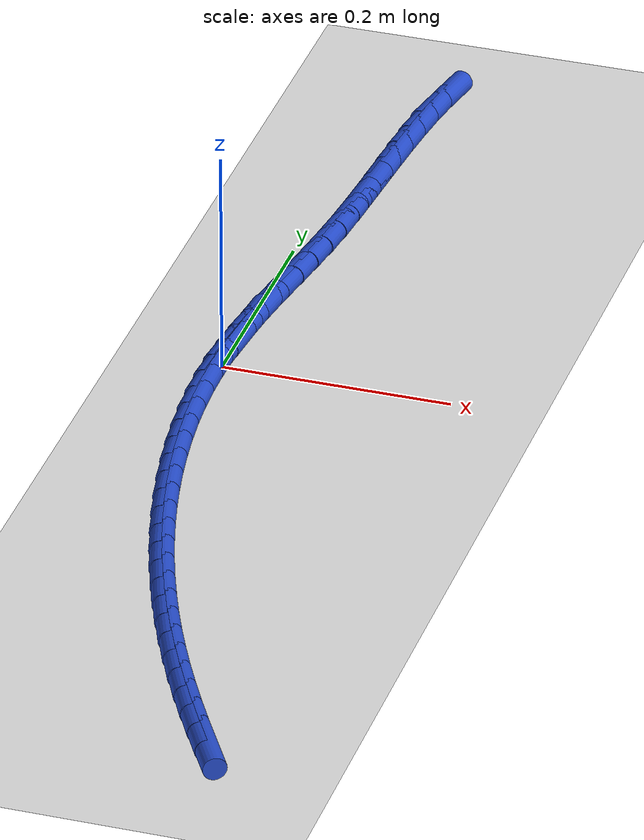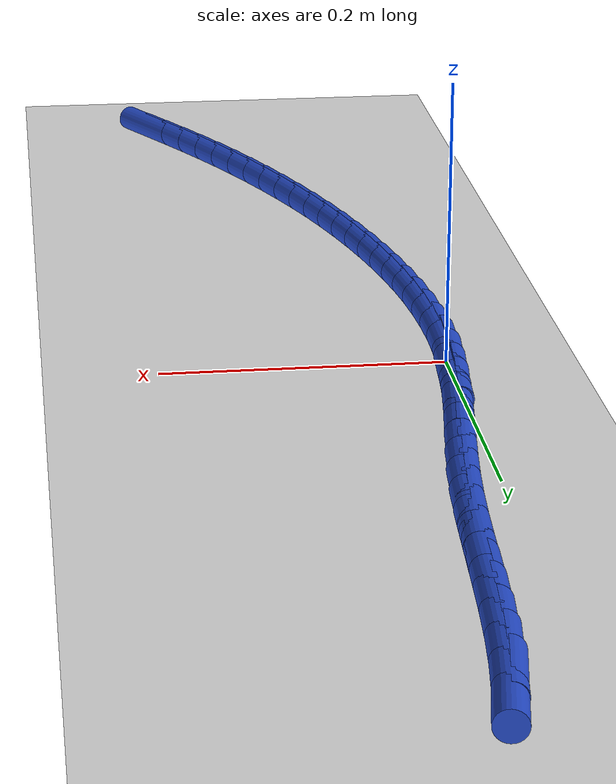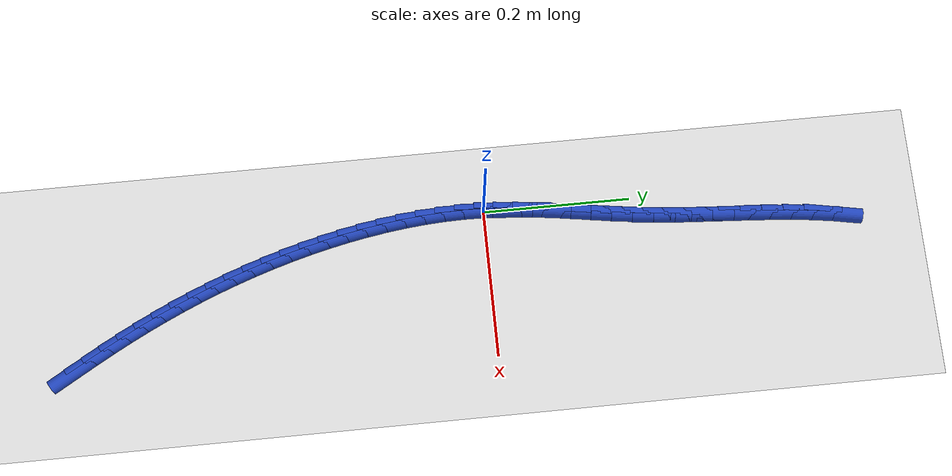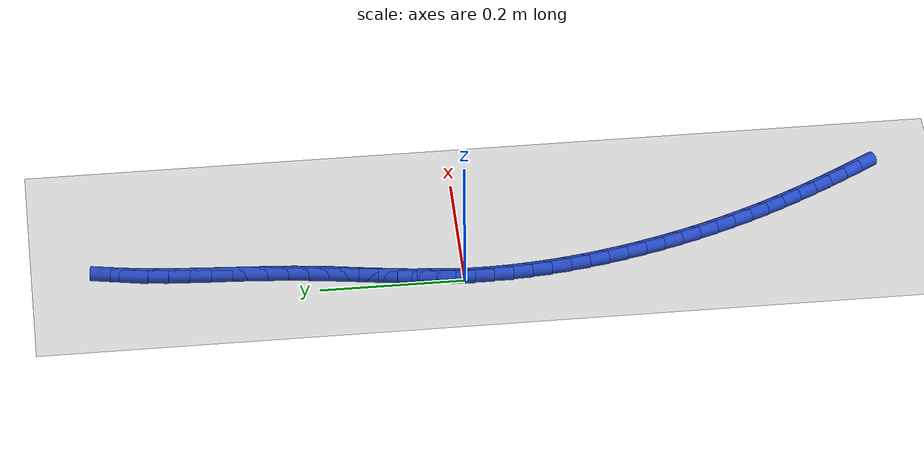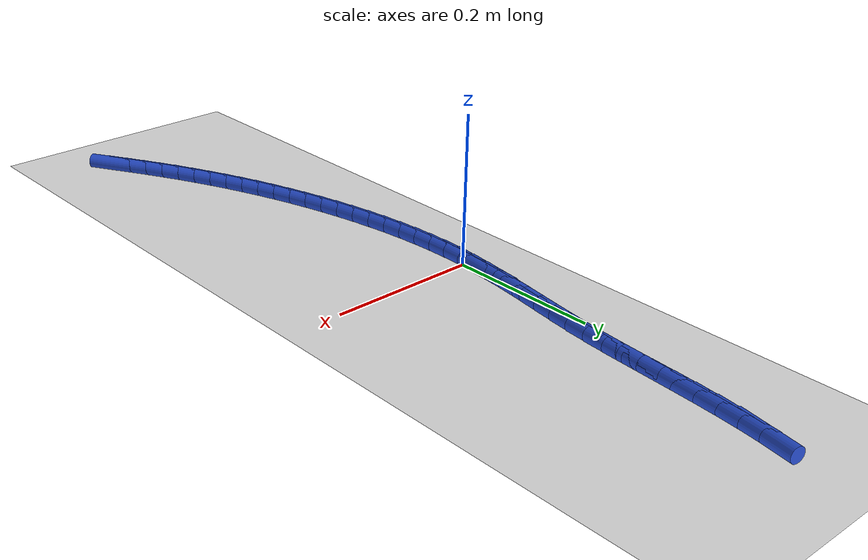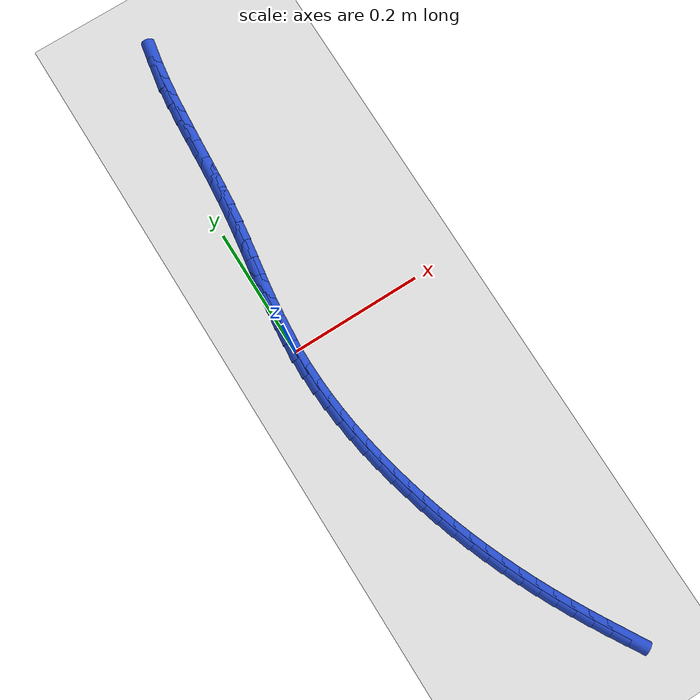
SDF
<sdf version="1.6">
 <world name="default">
  <model name="ground_plane">
   <static>1</static>
   <link name="link">
    <collision name="collision">
     <geometry><plane><normal>0 0 1</normal><size>100 100</size></plane></geometry>
     <surface><friction><ode><mu>100</mu><mu2>50</mu2></ode></friction></surface>
    </collision>
    <visual name="visual">
     <cast_shadows>0</cast_shadows>
     <geometry><plane><normal>0 0 1</normal><size>100 100</size></plane></geometry>
     <material>
      <script><uri>file://media/materials/scripts/gazebo.material</uri><name>Gazebo/WhiteGlow</name></script>
     </material>
    </visual>
   </link>
  </model>
  <model name="line">
   <link name="link_0">
    <pose>7.806255641895632e-18 1.3877787807814457e-17 0.01 0 1.57 1.514587896362002</pose>
    <collision name="collision">
     <geometry><cylinder><radius>0.01</radius><length>0.08</length></cylinder></geometry>
    </collision>
    <visual name="visual">
     <material>
      <script><name>Gazebo/Blue</name><uri>file://media/materials/scripts/gazebo.material</uri></script>
     </material>
     <geometry><cylinder><radius>0.01</radius><length>0.08</length></cylinder></geometry>
    </visual>
   </link>
   <link name="link_1">
    <pose>0.0014770493484000506 0.026250394922614786 0.01 0 1.57 1.4805047317773097</pose>
    <collision name="collision">
     <geometry><cylinder><radius>0.01</radius><length>0.08</length></cylinder></geometry>
    </collision>
    <visual name="visual">
     <material>
      <script><name>Gazebo/Blue</name><uri>file://media/materials/scripts/gazebo.material</uri></script>
     </material>
     <geometry><cylinder><radius>0.01</radius><length>0.08</length></cylinder></geometry>
    </visual>
   </link>
   <link name="link_2">
    <pose>0.0038420901585894352 0.0523725412709468 0.01 0 1.57 1.454021096162606</pose>
    <collision name="collision">
     <geometry><cylinder><radius>0.01</radius><length>0.08</length></cylinder></geometry>
    </collision>
    <visual name="visual">
     <material>
      <script><name>Gazebo/Blue</name><uri>file://media/materials/scripts/gazebo.material</uri></script>
     </material>
     <geometry><cylinder><radius>0.01</radius><length>0.08</length></cylinder></geometry>
    </visual>
   </link>
   <link name="link_3">
    <pose>0.00690294590006227 0.07846480404666 0.01 0 1.57 1.4353766958146992</pose>
    <collision name="collision">
     <geometry><cylinder><radius>0.01</radius><length>0.08</length></cylinder></geometry>
    </collision>
    <visual name="visual">
     <material>
      <script><name>Gazebo/Blue</name><uri>file://media/materials/scripts/gazebo.material</uri></script>
     </material>
     <geometry><cylinder><radius>0.01</radius><length>0.08</length></cylinder></geometry>
    </visual>
   </link>
   <link name="link_4">
    <pose>0.010467440042312667 0.10462554825141833 0.01 0 1.57 1.424626006290899</pose>
    <collision name="collision">
     <geometry><cylinder><radius>0.01</radius><length>0.08</length></cylinder></geometry>
    </collision>
    <visual name="visual">
     <material>
      <script><name>Gazebo/Blue</name><uri>file://media/materials/scripts/gazebo.material</uri></script>
     </material>
     <geometry><cylinder><radius>0.01</radius><length>0.08</length></cylinder></geometry>
    </visual>
   </link>
   <link name="link_5">
    <pose>0.014343396054834737 0.13095313888688573 0.01 0 1.57 1.421673920319607</pose>
    <collision name="collision">
     <geometry><cylinder><radius>0.01</radius><length>0.08</length></cylinder></geometry>
    </collision>
    <visual name="visual">
     <material>
      <script><name>Gazebo/Blue</name><uri>file://media/materials/scripts/gazebo.material</uri></script>
     </material>
     <geometry><cylinder><radius>0.01</radius><length>0.08</length></cylinder></geometry>
    </visual>
   </link>
   <link name="link_6">
    <pose>0.018338637407122587 0.15754594095472613 0.01 0 1.57 1.4263030760799773</pose>
    <collision name="collision">
     <geometry><cylinder><radius>0.01</radius><length>0.08</length></cylinder></geometry>
    </collision>
    <visual name="visual">
     <material>
      <script><name>Gazebo/Blue</name><uri>file://media/materials/scripts/gazebo.material</uri></script>
     </material>
     <geometry><cylinder><radius>0.01</radius><length>0.08</length></cylinder></geometry>
    </visual>
   </link>
   <link name="link_7">
    <pose>0.02226098756867033 0.18450231945660348 0.01 0 1.57 1.4381908114511264</pose>
    <collision name="collision">
     <geometry><cylinder><radius>0.01</radius><length>0.08</length></cylinder></geometry>
    </collision>
    <visual name="visual">
     <material>
      <script><name>Gazebo/Blue</name><uri>file://media/materials/scripts/gazebo.material</uri></script>
     </material>
     <geometry><cylinder><radius>0.01</radius><length>0.08</length></cylinder></geometry>
    </visual>
   </link>
   <link name="link_8">
    <pose>0.025918270008972077 0.21192063939418174 0.01 0 1.57 1.456916770432809</pose>
    <collision name="collision">
     <geometry><cylinder><radius>0.01</radius><length>0.08</length></cylinder></geometry>
    </collision>
    <visual name="visual">
     <material>
      <script><name>Gazebo/Blue</name><uri>file://media/materials/scripts/gazebo.material</uri></script>
     </material>
     <geometry><cylinder><radius>0.01</radius><length>0.08</length></cylinder></geometry>
    </visual>
   </link>
   <link name="link_9">
    <pose>0.029118308786755177 0.23989926535403608 0.01 0 1.57 1.4793346312724578</pose>
    <collision name="collision">
     <geometry><cylinder><radius>0.01</radius><length>0.08</length></cylinder></geometry>
    </collision>
    <visual name="visual">
     <material>
      <script><name>Gazebo/Blue</name><uri>file://media/materials/scripts/gazebo.material</uri></script>
     </material>
     <geometry><cylinder><radius>0.01</radius><length>0.08</length></cylinder></geometry>
    </visual>
   </link>
   <link name="link_10">
    <pose>0.031740244625666 0.26848632249421284 0.01 0 1.57 1.4955250086959533</pose>
    <collision name="collision">
     <geometry><cylinder><radius>0.01</radius><length>0.08</length></cylinder></geometry>
    </collision>
    <visual name="visual">
     <material>
      <script><name>Gazebo/Blue</name><uri>file://media/materials/scripts/gazebo.material</uri></script>
     </material>
     <geometry><cylinder><radius>0.01</radius><length>0.08</length></cylinder></geometry>
    </visual>
   </link>
   <link name="link_11">
    <pose>0.033931370791312906 0.2975410343957975 0.01 0 1.57 1.5037256005084356</pose>
    <collision name="collision">
     <geometry><cylinder><radius>0.01</radius><length>0.08</length></cylinder></geometry>
    </collision>
    <visual name="visual">
     <material>
      <script><name>Gazebo/Blue</name><uri>file://media/materials/scripts/gazebo.material</uri></script>
     </material>
     <geometry><cylinder><radius>0.01</radius><length>0.08</length></cylinder></geometry>
    </visual>
   </link>
   <link name="link_12">
    <pose>0.03590199393413775 0.32687823450403164 0.01 0 1.57 1.5042915713219993</pose>
    <collision name="collision">
     <geometry><cylinder><radius>0.01</radius><length>0.08</length></cylinder></geometry>
    </collision>
    <visual name="visual">
     <material>
      <script><name>Gazebo/Blue</name><uri>file://media/materials/scripts/gazebo.material</uri></script>
     </material>
     <geometry><cylinder><radius>0.01</radius><length>0.08</length></cylinder></geometry>
    </visual>
   </link>
   <link name="link_13">
    <pose>0.037862420704582345 0.35631275626415665 0.01 0 1.57 1.497307724409378</pose>
    <collision name="collision">
     <geometry><cylinder><radius>0.01</radius><length>0.08</length></cylinder></geometry>
    </collision>
    <visual name="visual">
     <material>
      <script><name>Gazebo/Blue</name><uri>file://media/materials/scripts/gazebo.material</uri></script>
     </material>
     <geometry><cylinder><radius>0.01</radius><length>0.08</length></cylinder></geometry>
    </visual>
   </link>
   <link name="link_14">
    <pose>0.04002295775308848 0.38565943312141393 0.01 0 1.57 1.4825967873798298</pose>
    <collision name="collision">
     <geometry><cylinder><radius>0.01</radius><length>0.08</length></cylinder></geometry>
    </collision>
    <visual name="visual">
     <material>
      <script><name>Gazebo/Blue</name><uri>file://media/materials/scripts/gazebo.material</uri></script>
     </material>
     <geometry><cylinder><radius>0.01</radius><length>0.08</length></cylinder></geometry>
    </visual>
   </link>
   <link name="link_15">
    <pose>0.04259391173009801 0.41473309852104495 0.01 0 1.57 1.4597187084186494</pose>
    <collision name="collision">
     <geometry><cylinder><radius>0.01</radius><length>0.08</length></cylinder></geometry>
    </collision>
    <visual name="visual">
     <material>
      <script><name>Gazebo/Blue</name><uri>file://media/materials/scripts/gazebo.material</uri></script>
     </material>
     <geometry><cylinder><radius>0.01</radius><length>0.08</length></cylinder></geometry>
    </visual>
   </link>
   <link name="link_16">
    <pose>0.045785589286052725 0.443348585908291 0.01 0 1.57 1.4279644087267036</pose>
    <collision name="collision">
     <geometry><cylinder><radius>0.01</radius><length>0.08</length></cylinder></geometry>
    </collision>
    <visual name="visual">
     <material>
      <script><name>Gazebo/Blue</name><uri>file://media/materials/scripts/gazebo.material</uri></script>
     </material>
     <geometry><cylinder><radius>0.01</radius><length>0.08</length></cylinder></geometry>
    </visual>
   </link>
   <link name="link_17">
    <pose>0.049808297071394475 0.47132072872839387 0.01 0 1.57 1.3863520234284576</pose>
    <collision name="collision">
     <geometry><cylinder><radius>0.01</radius><length>0.08</length></cylinder></geometry>
    </collision>
    <visual name="visual">
     <material>
      <script><name>Gazebo/Blue</name><uri>file://media/materials/scripts/gazebo.material</uri></script>
     </material>
     <geometry><cylinder><radius>0.01</radius><length>0.08</length></cylinder></geometry>
    </visual>
   </link>
   <link name="link_238">
    <pose>0.16692384186100473 -0.5596194425557584 0.01 0 1.57 -1.0411806943216348</pose>
    <collision name="collision">
     <geometry><cylinder><radius>0.01</radius><length>0.08</length></cylinder></geometry>
    </collision>
    <visual name="visual">
     <material>
      <script><name>Gazebo/Blue</name><uri>file://media/materials/scripts/gazebo.material</uri></script>
     </material>
     <geometry><cylinder><radius>0.01</radius><length>0.08</length></cylinder></geometry>
    </visual>
   </link>
   <link name="link_239">
    <pose>0.15335848178515002 -0.5364466695069651 0.01 0 1.57 -1.0563188091320044</pose>
    <collision name="collision">
     <geometry><cylinder><radius>0.01</radius><length>0.08</length></cylinder></geometry>
    </collision>
    <visual name="visual">
     <material>
      <script><name>Gazebo/Blue</name><uri>file://media/materials/scripts/gazebo.material</uri></script>
     </material>
     <geometry><cylinder><radius>0.01</radius><length>0.08</length></cylinder></geometry>
    </visual>
   </link>
   <link name="link_240">
    <pose>0.14015477678436183 -0.5130876973180528 0.01 0 1.57 -1.0736356181914426</pose>
    <collision name="collision">
     <geometry><cylinder><radius>0.01</radius><length>0.08</length></cylinder></geometry>
    </collision>
    <visual name="visual">
     <material>
      <script><name>Gazebo/Blue</name><uri>file://media/materials/scripts/gazebo.material</uri></script>
     </material>
     <geometry><cylinder><radius>0.01</radius><length>0.08</length></cylinder></geometry>
    </visual>
   </link>
   <link name="link_241">
    <pose>0.12736507547476375 -0.48951749083857377 0.01 0 1.57 -1.0931310517319888</pose>
    <collision name="collision">
     <geometry><cylinder><radius>0.01</radius><length>0.08</length></cylinder></geometry>
    </collision>
    <visual name="visual">
     <material>
      <script><name>Gazebo/Blue</name><uri>file://media/materials/scripts/gazebo.material</uri></script>
     </material>
     <geometry><cylinder><radius>0.01</radius><length>0.08</length></cylinder></geometry>
    </visual>
   </link>
   <link name="link_242">
    <pose>0.11504172647247937 -0.46571101491808004 0.01 0 1.57 -1.1145467853906288</pose>
    <collision name="collision">
     <geometry><cylinder><radius>0.01</radius><length>0.08</length></cylinder></geometry>
    </collision>
    <visual name="visual">
     <material>
      <script><name>Gazebo/Blue</name><uri>file://media/materials/scripts/gazebo.material</uri></script>
     </material>
     <geometry><cylinder><radius>0.01</radius><length>0.08</length></cylinder></geometry>
    </visual>
   </link>
   <link name="link_243">
    <pose>0.10323149399382703 -0.44164711627502673 0.01 0 1.57 -1.1367372994317626</pose>
    <collision name="collision">
     <geometry><cylinder><radius>0.01</radius><length>0.08</length></cylinder></geometry>
    </collision>
    <visual name="visual">
     <material>
      <script><name>Gazebo/Blue</name><uri>file://media/materials/scripts/gazebo.material</uri></script>
     </material>
     <geometry><cylinder><radius>0.01</radius><length>0.08</length></cylinder></geometry>
    </visual>
   </link>
   <link name="link_244">
    <pose>0.09195585775014047 -0.4173222175782043 0.01 0 1.57 -1.1593766733558228</pose>
    <collision name="collision">
     <geometry><cylinder><radius>0.01</radius><length>0.08</length></cylinder></geometry>
    </collision>
    <visual name="visual">
     <material>
      <script><name>Gazebo/Blue</name><uri>file://media/materials/scripts/gazebo.material</uri></script>
     </material>
     <geometry><cylinder><radius>0.01</radius><length>0.08</length></cylinder></geometry>
    </visual>
   </link>
   <link name="link_245">
    <pose>0.0812291449285434 -0.3927377134114306 0.01 0 1.57 -1.1824591986246549</pose>
    <collision name="collision">
     <geometry><cylinder><radius>0.01</radius><length>0.08</length></cylinder></geometry>
    </collision>
    <visual name="visual">
     <material>
      <script><name>Gazebo/Blue</name><uri>file://media/materials/scripts/gazebo.material</uri></script>
     </material>
     <geometry><cylinder><radius>0.01</radius><length>0.08</length></cylinder></geometry>
    </visual>
   </link>
   <link name="link_246">
    <pose>0.0710656822708496 -0.3678949986680719 0.01 0 1.57 -1.2059770648903225</pose>
    <collision name="collision">
     <geometry><cylinder><radius>0.01</radius><length>0.08</length></cylinder></geometry>
    </collision>
    <visual name="visual">
     <material>
      <script><name>Gazebo/Blue</name><uri>file://media/materials/scripts/gazebo.material</uri></script>
     </material>
     <geometry><cylinder><radius>0.01</radius><length>0.08</length></cylinder></geometry>
    </visual>
   </link>
   <link name="link_247">
    <pose>0.06147979651887208 -0.34279546824149326 0.01 0 1.57 -1.2299202259452813</pose>
    <collision name="collision">
     <geometry><cylinder><radius>0.01</radius><length>0.08</length></cylinder></geometry>
    </collision>
    <visual name="visual">
     <material>
      <script><name>Gazebo/Blue</name><uri>file://media/materials/scripts/gazebo.material</uri></script>
     </material>
     <geometry><cylinder><radius>0.01</radius><length>0.08</length></cylinder></geometry>
    </visual>
   </link>
   <link name="link_248">
    <pose>0.052485814414424146 -0.31744051702506004 0.01 0 1.57 -1.2542763017727006</pose>
    <collision name="collision">
     <geometry><cylinder><radius>0.01</radius><length>0.08</length></cylinder></geometry>
    </collision>
    <visual name="visual">
     <material>
      <script><name>Gazebo/Blue</name><uri>file://media/materials/scripts/gazebo.material</uri></script>
     </material>
     <geometry><cylinder><radius>0.01</radius><length>0.08</length></cylinder></geometry>
    </visual>
   </link>
   <link name="link_249">
    <pose>0.04409806269931908 -0.29183153991213784 0.01 0 1.57 -1.279030500640688</pose>
    <collision name="collision">
     <geometry><cylinder><radius>0.01</radius><length>0.08</length></cylinder></geometry>
    </collision>
    <visual name="visual">
     <material>
      <script><name>Gazebo/Blue</name><uri>file://media/materials/scripts/gazebo.material</uri></script>
     </material>
     <geometry><cylinder><radius>0.01</radius><length>0.08</length></cylinder></geometry>
    </visual>
   </link>
   <link name="link_250">
    <pose>0.03633086811537017 -0.26596993179609196 0.01 0 1.57 -1.3041655651880157</pose>
    <collision name="collision">
     <geometry><cylinder><radius>0.01</radius><length>0.08</length></cylinder></geometry>
    </collision>
    <visual name="visual">
     <material>
      <script><name>Gazebo/Blue</name><uri>file://media/materials/scripts/gazebo.material</uri></script>
     </material>
     <geometry><cylinder><radius>0.01</radius><length>0.08</length></cylinder></geometry>
    </visual>
   </link>
   <link name="link_251">
    <pose>0.02919855740439069 -0.23985708757028792 0.01 0 1.57 -1.3297789930578212</pose>
    <collision name="collision">
     <geometry><cylinder><radius>0.01</radius><length>0.08</length></cylinder></geometry>
    </collision>
    <visual name="visual">
     <material>
      <script><name>Gazebo/Blue</name><uri>file://media/materials/scripts/gazebo.material</uri></script>
     </material>
     <geometry><cylinder><radius>0.01</radius><length>0.08</length></cylinder></geometry>
    </visual>
   </link>
   <link name="link_252">
    <pose>0.02272072318036449 -0.2135024905617783 0.01 0 1.57 -1.3564089407210482</pose>
    <collision name="collision">
     <geometry><cylinder><radius>0.01</radius><length>0.08</length></cylinder></geometry>
    </collision>
    <visual name="visual">
     <material>
      <script><name>Gazebo/Blue</name><uri>file://media/materials/scripts/gazebo.material</uri></script>
     </material>
     <geometry><cylinder><radius>0.01</radius><length>0.08</length></cylinder></geometry>
    </visual>
   </link>
   <link name="link_253">
    <pose>0.016939366899650525 -0.186950044309444 0.01 0 1.57 -1.3843201869254738</pose>
    <collision name="collision">
     <geometry><cylinder><radius>0.01</radius><length>0.08</length></cylinder></geometry>
    </collision>
    <visual name="visual">
     <material>
      <script><name>Gazebo/Blue</name><uri>file://media/materials/scripts/gazebo.material</uri></script>
     </material>
     <geometry><cylinder><radius>0.01</radius><length>0.08</length></cylinder></geometry>
    </visual>
   </link>
   <link name="link_254">
    <pose>0.011902449775285831 -0.16025280659957586 0.01 0 1.57 -1.4136598693385622</pose>
    <collision name="collision">
     <geometry><cylinder><radius>0.01</radius><length>0.08</length></cylinder></geometry>
    </collision>
    <visual name="visual">
     <material>
      <script><name>Gazebo/Blue</name><uri>file://media/materials/scripts/gazebo.material</uri></script>
     </material>
     <geometry><cylinder><radius>0.01</radius><length>0.08</length></cylinder></geometry>
    </visual>
   </link>
   <link name="link_255">
    <pose>0.0076579330695484065 -0.13346383529409964 0.01 0 1.57 -1.4445810314788248</pose>
    <collision name="collision">
     <geometry><cylinder><radius>0.01</radius><length>0.08</length></cylinder></geometry>
    </collision>
    <visual name="visual">
     <material>
      <script><name>Gazebo/Blue</name><uri>file://media/materials/scripts/gazebo.material</uri></script>
     </material>
     <geometry><cylinder><radius>0.01</radius><length>0.08</length></cylinder></geometry>
    </visual>
   </link>
   <link name="link_256">
    <pose>0.004253778044716237 -0.10663618825494112 0.01 0 1.57 -1.4772423344026469</pose>
    <collision name="collision">
     <geometry><cylinder><radius>0.01</radius><length>0.08</length></cylinder></geometry>
    </collision>
    <visual name="visual">
     <material>
      <script><name>Gazebo/Blue</name><uri>file://media/materials/scripts/gazebo.material</uri></script>
     </material>
     <geometry><cylinder><radius>0.01</radius><length>0.08</length></cylinder></geometry>
    </visual>
   </link>
   <link name="link_257">
    <pose>0.0017379459630673202 -0.0798229233440261 0.01 0 1.57 -1.5118071079762705</pose>
    <collision name="collision">
     <geometry><cylinder><radius>0.01</radius><length>0.08</length></cylinder></geometry>
    </collision>
    <visual name="visual">
     <material>
      <script><name>Gazebo/Blue</name><uri>file://media/materials/scripts/gazebo.material</uri></script>
     </material>
     <geometry><cylinder><radius>0.01</radius><length>0.08</length></cylinder></geometry>
    </visual>
   </link>
   <link name="link_258">
    <pose>0.0001583980868796477 -0.053077098423280386 0.01 0 1.57 -1.5484415501222777</pose>
    <collision name="collision">
     <geometry><cylinder><radius>0.01</radius><length>0.08</length></cylinder></geometry>
    </collision>
    <visual name="visual">
     <material>
      <script><name>Gazebo/Blue</name><uri>file://media/materials/scripts/gazebo.material</uri></script>
     </material>
     <geometry><cylinder><radius>0.01</radius><length>0.08</length></cylinder></geometry>
    </visual>
   </link>
   <link name="link_259">
    <pose>-0.00043690432156878907 -0.026451771354629772 0.01 0 1.57 1.554280812906304</pose>
    <collision name="collision">
     <geometry><cylinder><radius>0.01</radius><length>0.08</length></cylinder></geometry>
    </collision>
    <visual name="visual">
     <material>
      <script><name>Gazebo/Blue</name><uri>file://media/materials/scripts/gazebo.material</uri></script>
     </material>
     <geometry><cylinder><radius>0.01</radius><length>0.08</length></cylinder></geometry>
    </visual>
   </link>
   <link name="link_260">
    <pose>4.336808689942018e-18 -3.469446951953614e-17 0.01 0 1.57 1.5130127481963336</pose>
    <collision name="collision">
     <geometry><cylinder><radius>0.01</radius><length>0.08</length></cylinder></geometry>
    </collision>
    <visual name="visual">
     <material>
      <script><name>Gazebo/Blue</name><uri>file://media/materials/scripts/gazebo.material</uri></script>
     </material>
     <geometry><cylinder><radius>0.01</radius><length>0.08</length></cylinder></geometry>
    </visual>
   </link>
   <link name="link_261">
    <pose>0.001517072313864016 0.026225157778682985 0.01 0 1.57 1.4691950967097454</pose>
    <collision name="collision">
     <geometry><cylinder><radius>0.01</radius><length>0.08</length></cylinder></geometry>
    </collision>
    <visual name="visual">
     <material>
      <script><name>Gazebo/Blue</name><uri>file://media/materials/scripts/gazebo.material</uri></script>
     </material>
     <geometry><cylinder><radius>0.01</radius><length>0.08</length></cylinder></geometry>
    </visual>
   </link>
   <link name="link_262">
    <pose>0.0041622738823012435 0.05217064411949354 0.01 0 1.57 1.491183043202883</pose>
    <collision name="collision">
     <geometry><cylinder><radius>0.01</radius><length>0.08</length></cylinder></geometry>
    </collision>
    <visual name="visual">
     <material>
      <script><name>Gazebo/Blue</name><uri>file://media/materials/scripts/gazebo.material</uri></script>
     </material>
     <geometry><cylinder><radius>0.01</radius><length>0.08</length></cylinder></geometry>
    </visual>
   </link>
  </model>
 </world>
</sdf>
